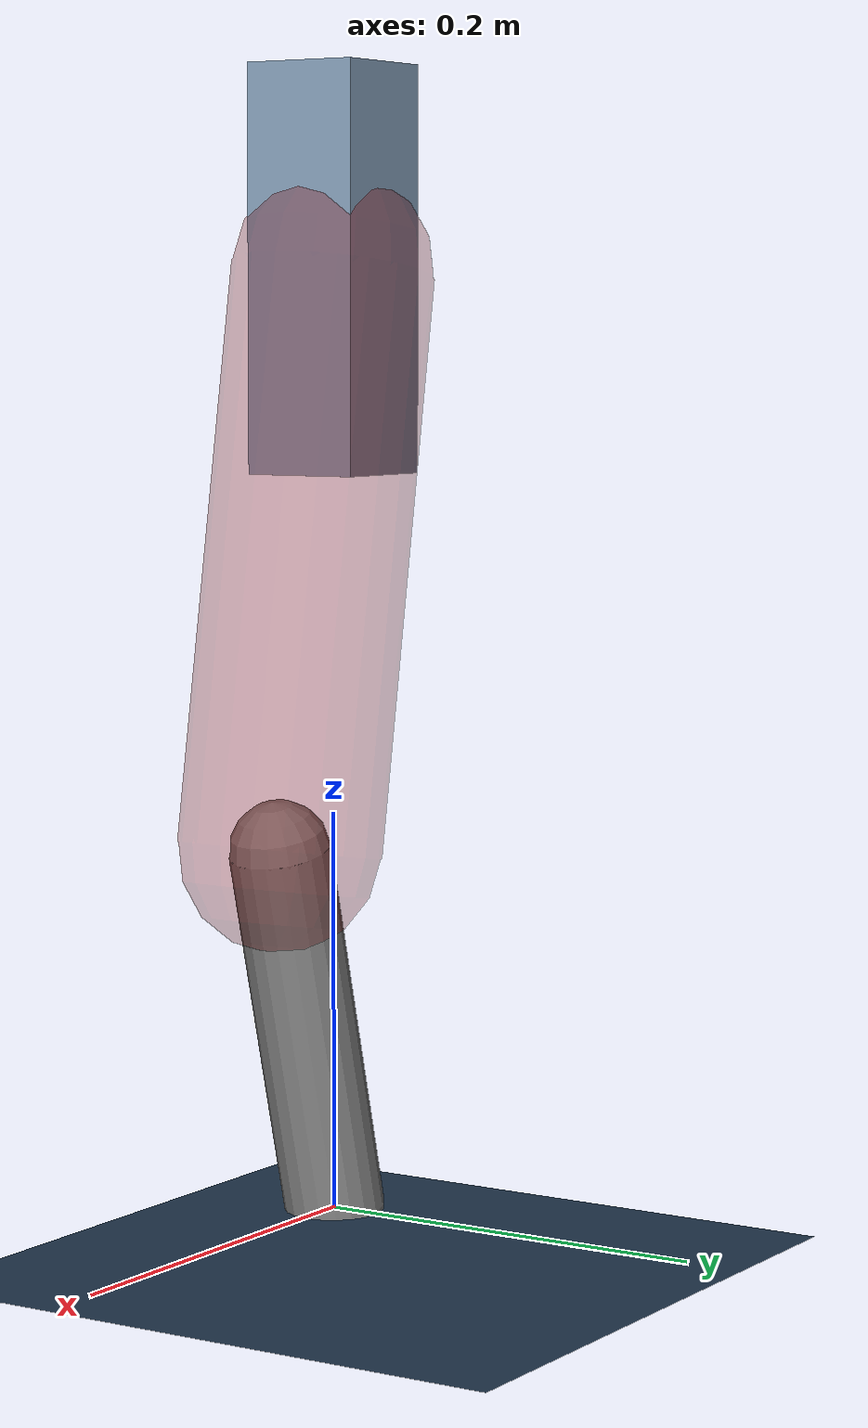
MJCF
<mujoco model="Hopper2D">
	<compiler inertiafromgeom="true" angle="radian" />
	<option timestep="0.001" integrator="implicit" cone="elliptic" solver="Newton" tolerance="1e-10" />

	<default>
		<geom contype="1" conaffinity="1" condim="3" friction="2 0.005 0.0001" solref="0.005 1" />
		<joint limited="true" damping="0.1" />
	</default>

	<asset>
		<texture name="skybox" type="skybox" builtin="gradient" rgb1=".4 .6 .8" rgb2="0 0 0" width="800" height="800" />
		<texture name="grid" type="2d" builtin="checker" rgb1=".1 .2 .3" rgb2=".2 .3 .4" width="300" height="300" mark="edge" markrgb=".2 .3 .4" />
		<material name="ground" texture="grid" texrepeat="1 1" texuniform="true" reflectance="0.1" />
		<material name="leg" rgba="0.5 0.6 0.7 1" />
	</asset>

	<worldbody>

		<geom name="floor" type="plane" size="5 5 0.25" material="ground" />

		<light directional="false" diffuse="0.8 0.8 0.8" specular="0.3 0.3 0.3" pos="0 0 2" dir="0 0 -1" />
		<light mode="targetbodycom" target="base" directional="false" diffuse="0.8 0.8 0.8" specular="0.3 0.3 0.3" pos="0 0 2" dir="0 0 -1" />

		<camera name="fixed" pos="0 -2 1" xyaxes="1 0 0 0 0 1" />
		<camera name="tracking" mode="trackcom" pos="0 -3 1" />

		<body name="root" pos="0 0 0.4685331625270719">
			<joint name="slide_x" type="slide" axis="1 0 0" range="-100 100" />
			<joint name="slide_z" type="slide" axis="0 0 1" range="0 10" />

			<body name="base" pos="0 0 0">
				<geom name="torso" type="box" size="0.03 0.03 0.1" mass="2.309" material="leg" />

				<body name="link1" pos="0 0 0" euler="0 1.4032472247191392 0">
					<joint type="hinge" axis="0 -1 0" pos="0 0 0" name="hinge1" limited="true" range="-3.14 3.14" stiffness="0" damping="0.1" />
					<geom name="thigh" type="capsule" fromto="0 0 0 0.2859305489234987 0 0" size="0.05" rgba="0.5 0 0 0.3" mass="0.9509124820934465" />

					<body name="link2" pos="0.2859305489234987 0 0" euler="0 0.41772553116017264 0">
						<joint type="hinge" axis="0 -1 0" pos="0 0 0" name="hinge2" limited="true" range="-3.14 3.14" stiffness="0" damping="0.1" />
						<geom name="shank" type="capsule" fromto="0 0 0 0.19260261360357323 0 0" size="0.025" mass="0.3946423522432159" />

					</body>
				</body>
			</body>
		</body>
	</worldbody>

	<actuator>
		<motor name="torque1" joint="hinge1" ctrlrange="-83.44110748417405 83.44110748417405" ctrllimited="true" gear="1" />
		<motor name="torque2" joint="hinge2" ctrlrange="-20.689868288168316 20.689868288168316" ctrllimited="true" gear="1" />
	</actuator>
</mujoco>
